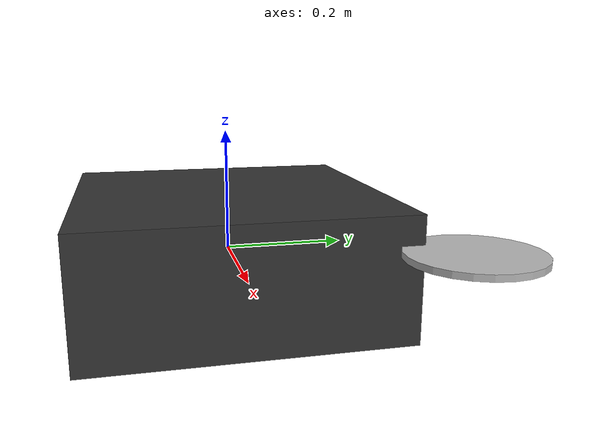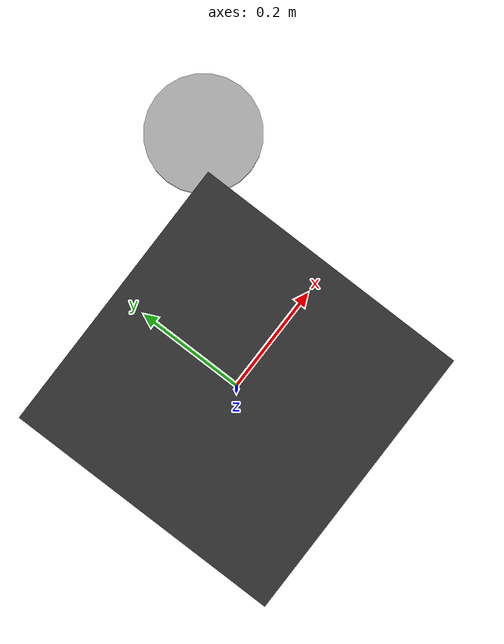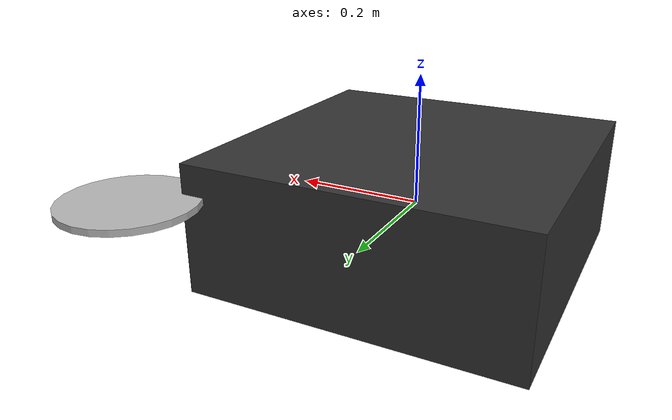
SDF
<?xml version="1.0" ?>
<sdf version="1.9">
  <model name="fixar_007">

    <plugin filename="ignition-gazebo-joint-state-publisher-system"
            name="ignition::gazebo::systems::JointStatePublisher"/>
    <plugin filename="ignition-gazebo-pose-publisher-system"
            name="ignition::gazebo::systems::PosePublisher">
      <publish_link_pose>true</publish_link_pose>
      <update_frequency>400</update_frequency>
    </plugin>
    <plugin filename="ignition-gazebo-odometry-publisher-system"
            name="ignition::gazebo::systems::OdometryPublisher">
      <odom_topic>/fixar_007/odometry</odom_topic>
    </plugin>

    <plugin filename="ignition-gazebo-imu-system" name="ignition::gazebo::systems::Imu"/>
    <plugin filename="ignition-gazebo-navsat-system" name="ignition::gazebo::systems::NavSat"/>
    <plugin filename="ignition-gazebo-altimeter-system" name="ignition::gazebo::systems::Altimeter"/>
    <plugin filename="ignition-gazebo-magnetometer-system" name="ignition::gazebo::systems::Magnetometer"/>
    <plugin filename="ignition-gazebo-air-pressure-system" name="ignition::gazebo::systems::AirPressure"/>

    <link name="base_link">
      <pose>0 0 0 0 0 0</pose>
      <inertial>
        <!-- GENERIC PLACEHOLDER VALUES -->
        <mass>7.0</mass>
        <inertia>
          <ixx>0.5</ixx> <ixy>0</ixy> <ixz>0</ixz>
          <iyy>0.5</iyy> <iyz>0</iyz> <izz>1.0</izz>
        </inertia>
      </inertial>

      <!-- NOTE: Mesh files withheld (proprietary design) -->
      <!-- Use placeholder geometry for demonstration -->
      <visual name="base_link_visual">
        <geometry>
          <box><size>0.5 0.5 0.2</size></box>
        </geometry>
        <material><diffuse>0.2 0.2 0.2 1</diffuse></material>
      </visual>

      <collision name="base_link_collision">
        <geometry>
          <box><size>0.5 0.5 0.2</size></box>
        </geometry>
      </collision>

      <!-- Sensor definitions -->
      <sensor name="imu_sensor" type="imu">
        <always_on>1</always_on>
        <update_rate>400</update_rate>
        <topic>/fixar_007/imu</topic>
      </sensor>

      <sensor name="navsat_sensor" type="navsat">
        <always_on>1</always_on>
        <update_rate>50</update_rate>
        <topic>/fixar_007/gps</topic>
      </sensor>
    </link>

    <!-- MOTOR PLUGINS (Generic Configuration) -->
    <!-- Detailed motor parameters withheld -->
    <link name="propeller_0">
      <pose relative_to="base_link">0.3 0.3 0.05 0 0 0</pose>
      <inertial><mass>0.05</mass></inertial>
      <visual name="prop_visual">
        <geometry><cylinder><radius>0.1</radius><length>0.01</length></cylinder></geometry>
      </visual>
    </link>
    <joint name="propeller_joint_0" type="revolute">
      <parent>base_link</parent>
      <child>propeller_0</child>
      <axis><xyz>0 0 1</xyz></axis>
    </joint>

    <!-- Additional motors 1-3 follow same pattern... -->
    <!-- Full implementation available in private repository -->

  </model>
</sdf>
